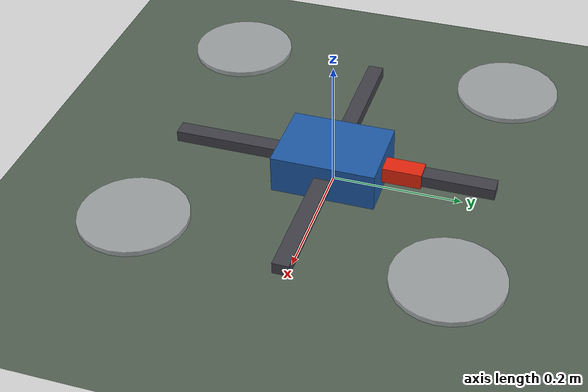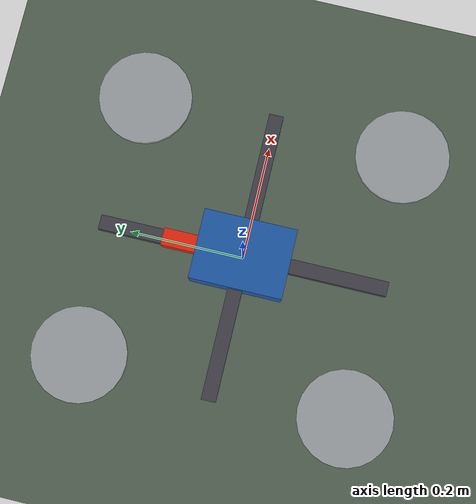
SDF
<?xml version="1.0"?>
<sdf version="1.10">
  <world name="course_world">
    <gravity>0 0 -9.81</gravity>
    <physics name="1ms" type="ignored">
      <max_step_size>0.001</max_step_size>
      <real_time_factor>1.0</real_time_factor>
    </physics>

    <spherical_coordinates>
      <surface_model>EARTH_WGS84</surface_model>
      <world_frame_orientation>ENU</world_frame_orientation>
      <latitude_deg>1.3521</latitude_deg>
      <longitude_deg>103.8198</longitude_deg>
      <elevation>0.0</elevation>
      <heading_deg>0.0</heading_deg>
    </spherical_coordinates>

    <plugin filename="gz-sim-physics-system" name="gz::sim::systems::Physics"/>
    <plugin filename="gz-sim-user-commands-system" name="gz::sim::systems::UserCommands"/>
    <plugin filename="gz-sim-scene-broadcaster-system" name="gz::sim::systems::SceneBroadcaster"/>
    <plugin filename="gz-sim-sensors-system" name="gz::sim::systems::Sensors">
      <render_engine>ogre2</render_engine>
    </plugin>
    <plugin filename="gz-sim-imu-system" name="gz::sim::systems::Imu"/>
    <plugin filename="gz-sim-navsat-system" name="gz::sim::systems::NavSat"/>

    <light type="directional" name="sun">
      <cast_shadows>true</cast_shadows>
      <pose>0 0 10 0 0 0</pose>
      <diffuse>0.8 0.8 0.8 1</diffuse>
      <specular>0.2 0.2 0.2 1</specular>
      <direction>-0.5 0.2 -0.9</direction>
    </light>

    <model name="ground_plane">
      <static>true</static>
      <link name="link">
        <collision name="collision">
          <geometry><plane><normal>0 0 1</normal><size>100 100</size></plane></geometry>
        </collision>
        <visual name="visual">
          <geometry><plane><normal>0 0 1</normal><size>100 100</size></plane></geometry>
          <material><diffuse>0.32 0.38 0.32 1</diffuse></material>
        </visual>
      </link>
    </model>

    <!-- Start with the body collision just above the ground.  The +90 deg ENU
         yaw makes the converted NED/FRD attitude the identity quaternion. -->
    <include>
      <uri>model://course_quadrotor</uri>
      <pose>0 0 0.035 0 0 1.5707963267948966</pose>
    </include>
  </world>
</sdf>

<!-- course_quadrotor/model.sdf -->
<sdf version="1.10">
  <model name="course_quadrotor">
    <static>false</static>
    <self_collide>false</self_collide>

    <!-- Gazebo uses ENU/FLU. The GNC stack performs an explicit conversion to NED/FRD. -->
    <link name="base_link">
      <inertial>
        <mass>1.20</mass>
        <inertia>
          <ixx>0.0125</ixx>
          <iyy>0.0125</iyy>
          <izz>0.0220</izz>
          <ixy>0.0</ixy>
          <ixz>0.0</ixz>
          <iyz>0.0</iyz>
        </inertia>
      </inertial>

      <collision name="body_collision">
        <geometry>
          <box><size>0.16 0.12 0.06</size></box>
        </geometry>
      </collision>

      <visual name="body_visual">
        <geometry>
          <box><size>0.16 0.12 0.06</size></box>
        </geometry>
        <material>
          <ambient>0.08 0.12 0.18 1</ambient>
          <diffuse>0.12 0.35 0.65 1</diffuse>
        </material>
      </visual>

      <visual name="front_marker">
        <pose>0.10 0 0 0 0 0</pose>
        <geometry><box><size>0.08 0.03 0.025</size></box></geometry>
        <material>
          <ambient>0.8 0.1 0.05 1</ambient>
          <diffuse>0.9 0.15 0.05 1</diffuse>
        </material>
      </visual>

      <!-- Arm endpoints use dx = dy = 0.225 m from the specification. -->
      <visual name="arm_x_visual">
        <geometry><box><size>0.50 0.025 0.018</size></box></geometry>
        <material><diffuse>0.25 0.25 0.28 1</diffuse></material>
      </visual>
      <visual name="arm_y_visual">
        <geometry><box><size>0.025 0.50 0.018</size></box></geometry>
        <material><diffuse>0.25 0.25 0.28 1</diffuse></material>
      </visual>

      <visual name="rotor_0_visual">
        <pose>0.225 0.225 0.02 0 0 0</pose>
        <geometry><cylinder><radius>0.08</radius><length>0.008</length></cylinder></geometry>
        <material><diffuse>0.75 0.75 0.78 0.75</diffuse></material>
      </visual>
      <visual name="rotor_1_visual">
        <pose>-0.225 0.225 0.02 0 0 0</pose>
        <geometry><cylinder><radius>0.08</radius><length>0.008</length></cylinder></geometry>
        <material><diffuse>0.75 0.75 0.78 0.75</diffuse></material>
      </visual>
      <visual name="rotor_2_visual">
        <pose>-0.225 -0.225 0.02 0 0 0</pose>
        <geometry><cylinder><radius>0.08</radius><length>0.008</length></cylinder></geometry>
        <material><diffuse>0.75 0.75 0.78 0.75</diffuse></material>
      </visual>
      <visual name="rotor_3_visual">
        <pose>0.225 -0.225 0.02 0 0 0</pose>
        <geometry><cylinder><radius>0.08</radius><length>0.008</length></cylinder></geometry>
        <material><diffuse>0.75 0.75 0.78 0.75</diffuse></material>
      </visual>

      <!-- Raw ideal sensors. Required white noise and random-walk bias are added by
           sensor_simulator_node, keeping all course assumptions explicit in our code. -->
      <sensor name="imu_raw" type="imu">
        <always_on>true</always_on>
        <update_rate>100</update_rate>
        <topic>/drone/imu_raw</topic>
      </sensor>

      <sensor name="navsat_raw" type="navsat">
        <always_on>true</always_on>
        <update_rate>20</update_rate>
        <topic>/drone/navsat_raw</topic>
      </sensor>
    </link>

    <!-- This is the team's own actuator map. It applies only the equations given
         in the specification; it does not call Gazebo's MulticopterMotorModel. -->
    <plugin filename="librotor_wrench_system.so"
            name="drone_gazebo::RotorWrenchSystem">
      <link_name>base_link</link_name>
      <command_topic>/drone/rotor_thrusts_gz</command_topic>
      <dx>0.225</dx>
      <dy>0.225</dy>
      <moment_ratio>0.015</moment_ratio>
      <min_thrust>0.2</min_thrust>
      <max_thrust>5.5</max_thrust>
      <command_timeout>0.2</command_timeout>
    </plugin>

    <plugin filename="gz-sim-odometry-publisher-system"
            name="gz::sim::systems::OdometryPublisher">
      <odom_publish_frequency>100</odom_publish_frequency>
      <odom_topic>/model/course_quadrotor/odometry</odom_topic>
      <dimensions>3</dimensions>
    </plugin>
  </model>
</sdf>
